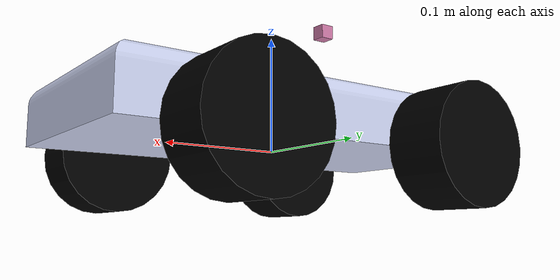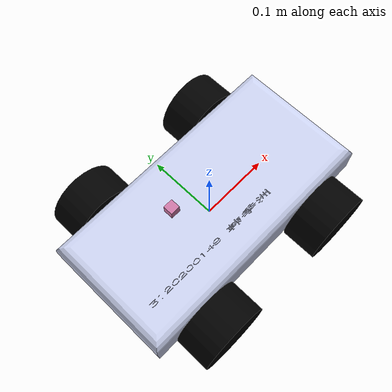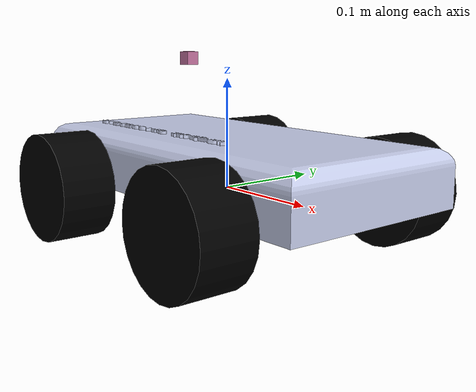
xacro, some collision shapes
<?xml version="1.0"?>

<robot xmlns:xacro="http://www.ros.org/wiki/xacro"
        xmlns:sensor="http://playerstage.sourceforge.net/gazebo/xmlschema/#sensor"
    	 xmlns:controller="http://playerstage.sourceforge.net/gazebo/xmlschema/#controller"
    	 xmlns:interface="http://playerstage.sourceforge.net/gazebo/xmlschema/#interface"
       name="xiaoche_xacro">

	<xacro:property name="length_wheel" value="0.05" />
	<xacro:property name="radius_wheel" value="0.05" />

	<xacro:macro name="default_inertial" params="mass">
               <inertial>
                       <mass value="${mass}" />
                       <inertia ixx="1.0" ixy="0.0" ixz="0.0"
                                iyy="1.0" iyz="0.0"
                                izz="1.0" />
               </inertial>
	</xacro:macro>
	<link name="base_footprint">
		<visual>
			<geometry>
				<box size="0.001 0.001 0.001"/>
			</geometry>
			<origin rpy="0 0 0" xyz="0 0 0"/>
		</visual>
		<!-- xacro:default_inertial mass="0.0001"/ -->
	</link>
<xacro:include filename="$(find xiaoche)/urdf/xiaoche.gazebo" />
 	<gazebo reference="base_footprint">
		<material>Gazebo/Green</material>
		<turnGravityOff>false</turnGravityOff>
	</gazebo>
		<joint name="base_footprint_joint" type="fixed">
		<parent link="base_footprint" />
		<child link="xiaoche" />
		<origin xyz="0 0 0" />
	</joint>
 <link
    name="xiaoche">
    <inertial>
      <origin
        xyz="-0.018861 -3.28539999999094E-07 0.014799"
        rpy="0 0 0" />
      <mass
        value="6.8608" />
      <inertia
        ixx="0.025771"
        ixy="1.62680000000094E-07"
        ixz="-0.0015283"
        iyy="0.088822"
        iyz="-1.50629999999432E-07"
        izz="0.098092" />
    </inertial>
    <visual>
      <origin
        xyz="0 0 0"
        rpy="1.5707963267949 0 0" />
      <geometry>
        <mesh
          filename="package://xiaoche/meshes/car.STL" />
      </geometry>
      <material
        name="">
        <color
          rgba="0.79216 0.81961 0.93333 1" />
        <texture
         />
      </material>
    </visual>

  </link>

  <link name="wheel_1">
   		<visual>
     			<geometry>
       				<cylinder length="${length_wheel}" radius="${radius_wheel}"/>
     			</geometry>
			<origin rpy="0 0 0" xyz="0 0 0"/>
   			<material name="black">
				<color rgba="0 0 0 1"/>
			</material>
		</visual>
		<collision>
			<geometry>
       				<cylinder length="${length_wheel}" radius="${radius_wheel}"/>
			</geometry>
		</collision>
		<xacro:default_inertial mass="1"/>
 	</link>

 	<link name="wheel_2">
   		<visual>
     			<geometry>
       				<cylinder length="${length_wheel}" radius="${radius_wheel}"/>
     			</geometry>
			<origin rpy="0 0 0" xyz="0 0 0"/>
   			<material name="black"/>
   		</visual>
		<collision>
			<geometry>
       				<cylinder length="${length_wheel}" radius="${radius_wheel}"/>
			</geometry>
		</collision>
		<xacro:default_inertial mass="1"/>
 	</link>

 	<link name="wheel_3">
   		<visual>
     			<geometry>
       				<cylinder length="${length_wheel}" radius="${radius_wheel}"/>
     			</geometry>
			<origin rpy="0 0 0" xyz="0 0 0"/>
   			<material name="black"/>
   		</visual>
		<collision>
			<geometry>
       				<cylinder length="${length_wheel}" radius="${radius_wheel}"/>
			</geometry>
		</collision>
		<xacro:default_inertial mass="1"/>
 	</link>

 	<link name="wheel_4">
   		<visual>
     			<geometry>
       				<cylinder length="${length_wheel}" radius="${radius_wheel}"/>
     			</geometry>
			<origin rpy="0 0 0" xyz="0 0 0" />
   			<material name="black"/>
   		</visual>
		<collision>
			<geometry>
       				<cylinder length="${length_wheel}" radius="${radius_wheel}"/>
			</geometry>
		</collision>
		<xacro:default_inertial mass="1"/>
 	</link>
<joint name="base_to_wheel1" type="continuous">
   <parent link="xiaoche"/>
   <child link="wheel_1"/>
   <origin rpy="-1.5707 0 0" xyz="0.1 0.115 0"/>
   <axis xyz="0 0 1" />
 </joint>

 <joint name="base_to_wheel2" type="continuous">
   <parent link="xiaoche"/>
   <child link="wheel_2"/>
   <origin rpy="-1.5707 0 0" xyz="-0.1 0.115 0"/>
   <axis xyz="0 0 1" />
   <anchor xyz="0 0 0" />
   <limit effort="100" velocity="100" />
 </joint>

 <joint name="base_to_wheel3" type="continuous">
   <parent link="xiaoche"/>
   <child link="wheel_3"/>
   <origin rpy="-1.5707 0 0" xyz="0.1 -0.115 0"/>
   <axis xyz="0 0 1" />
 </joint>

 <joint name="base_to_wheel4" type="continuous">
   <parent link="xiaoche"/>
   <child link="wheel_4"/>
   <origin rpy="-1.5707 0 0" xyz="-0.1 -0.115 0"/>
   <axis xyz="0 0 1" />
 </joint>

   <!-- Hokuyo joint -->
  <joint name="hokuyo_joint" type="fixed">
    <origin xyz="-0.0600 0 0.1175" rpy="0 0 0"/>
    <parent link="xiaoche"/>
    <axis xyz="0 1 0" />
    <child link="hokuyo_link"/>
  </joint>

  <!-- Hokuyo Laser -->
  <link name="hokuyo_link">
    <collision>
      <origin xyz="0 0 0" rpy="0 0 0"/>
      <geometry>
        <box size="0.0125 0.0125 0.0125"/>
      </geometry>
    </collision>
    <visual>
      <origin xyz="0 0 0" rpy="0 0 0"/>
      <geometry>
        <mesh filename="package://xiaoche/meshes/hokuyo.dae"/>
      </geometry>
    </visual>
    <inertial>
      <mass value="1e-5" />
      <origin xyz="0 0 0" rpy="0 0 0"/>
      <inertia ixx="1e-6" ixy="0" ixz="0" iyy="1e-6" iyz="0" izz="1e-6" />
    </inertial>
  </link>

<!-- Drive controller -->
  <gazebo>
    <plugin name="skid_steer_drive_controller" filename="libgazebo_ros_skid_steer_drive.so">
      <updateRate>100.0</updateRate>
      <robotNamespace>/</robotNamespace>
      <leftFrontJoint>base_to_wheel1</leftFrontJoint>
      <rightFrontJoint>base_to_wheel3</rightFrontJoint>
      <leftRearJoint>base_to_wheel2</leftRearJoint>
      <rightRearJoint>base_to_wheel4</rightRearJoint>
      <wheelSeparation>4</wheelSeparation>
      <wheelDiameter>0.1</wheelDiameter>
      <robotBaseFrame>base_footprint</robotBaseFrame>
      <torque>1</torque>
      <commandTopic>cmd_vel</commandTopic>
      <odometryTopic>odom</odometryTopic>
	<odometryFrame>odom</odometryFrame>
	<broadcastTF>true</broadcastTF>
    </plugin>
  </gazebo>
  </robot>
